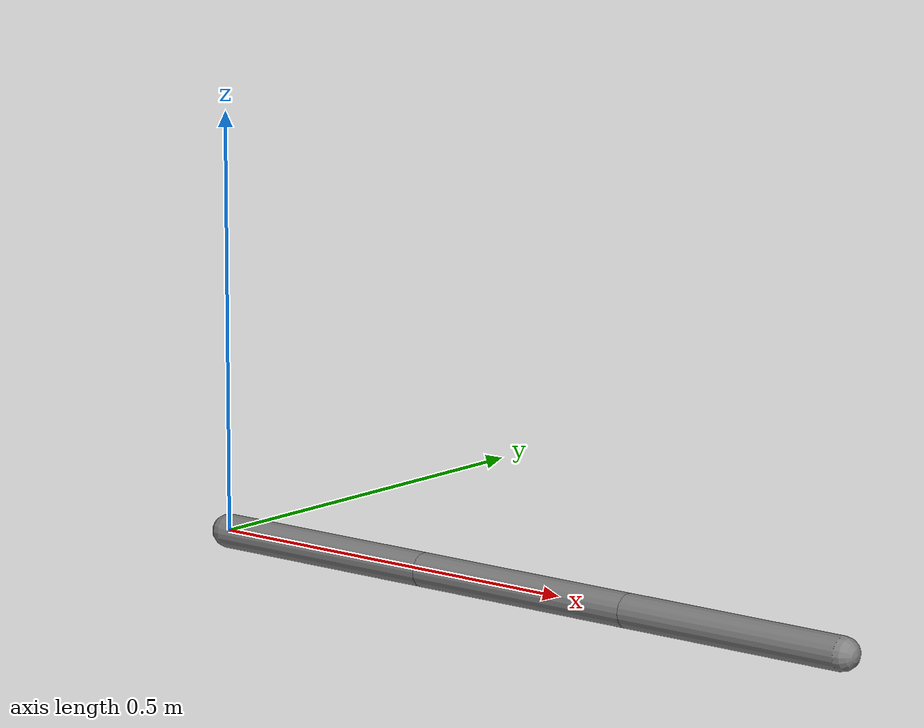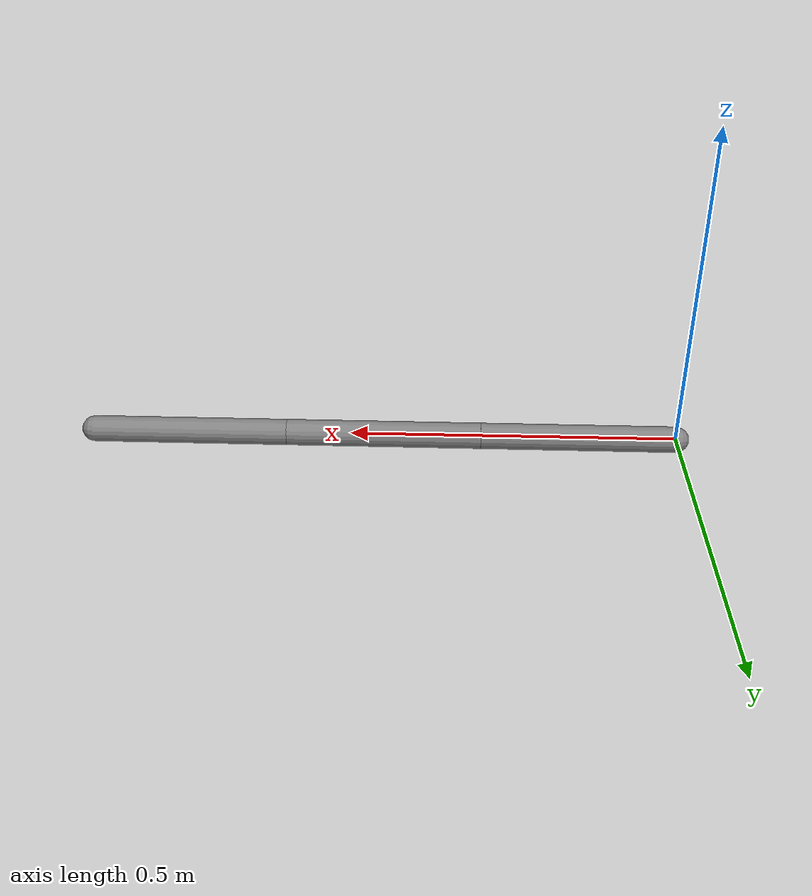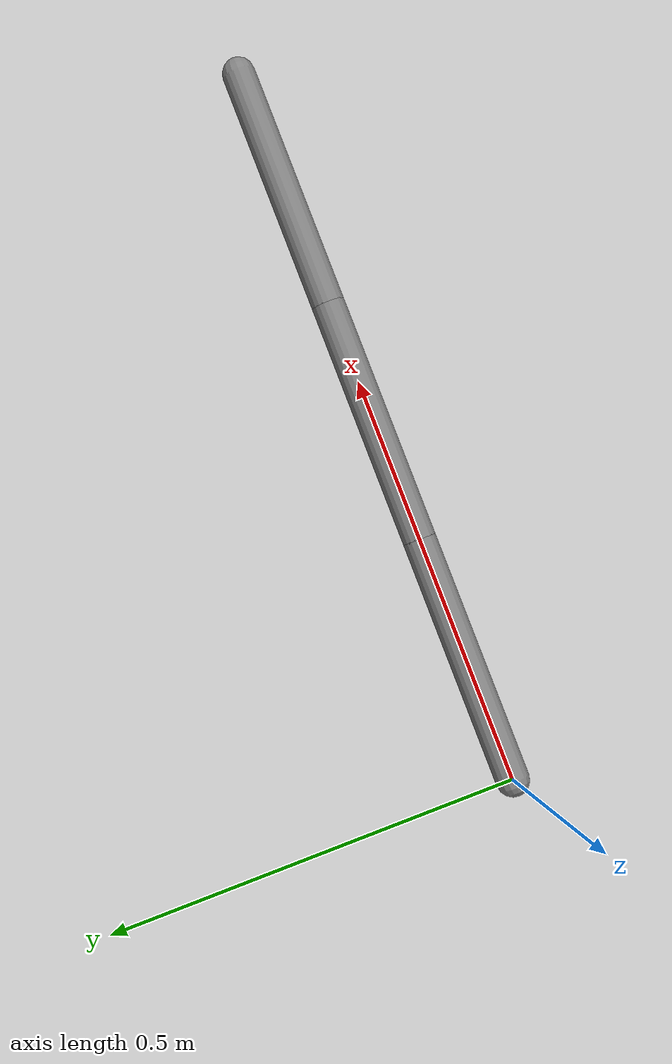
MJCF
<mujoco model="gravcomp_chain">
            <compiler angle="radian"/>
            <option gravity="0 0 -9.81" timestep="0.001"/>
            <worldbody>
                <body name="link1" pos="0 0 0">
                    <joint name="j1" type="hinge" axis="0 1 0"/>
                    <geom type="capsule" fromto="0 0 0 0.3 0 0" size="0.02" mass="1.0"/>
                    <body name="link2" pos="0.3 0 0">
                        <joint name="j2" type="hinge" axis="0 1 0"/>
                        <geom type="capsule" fromto="0 0 0 0.3 0 0" size="0.02" mass="1.0"/>
                        <body name="link3" pos="0.3 0 0">
                            <joint name="j3" type="hinge" axis="0 1 0"/>
                            <geom type="capsule" fromto="0 0 0 0.3 0 0" size="0.02" mass="1.0"/>
                        </body>
                    </body>
                </body>
            </worldbody>
        </mujoco>
